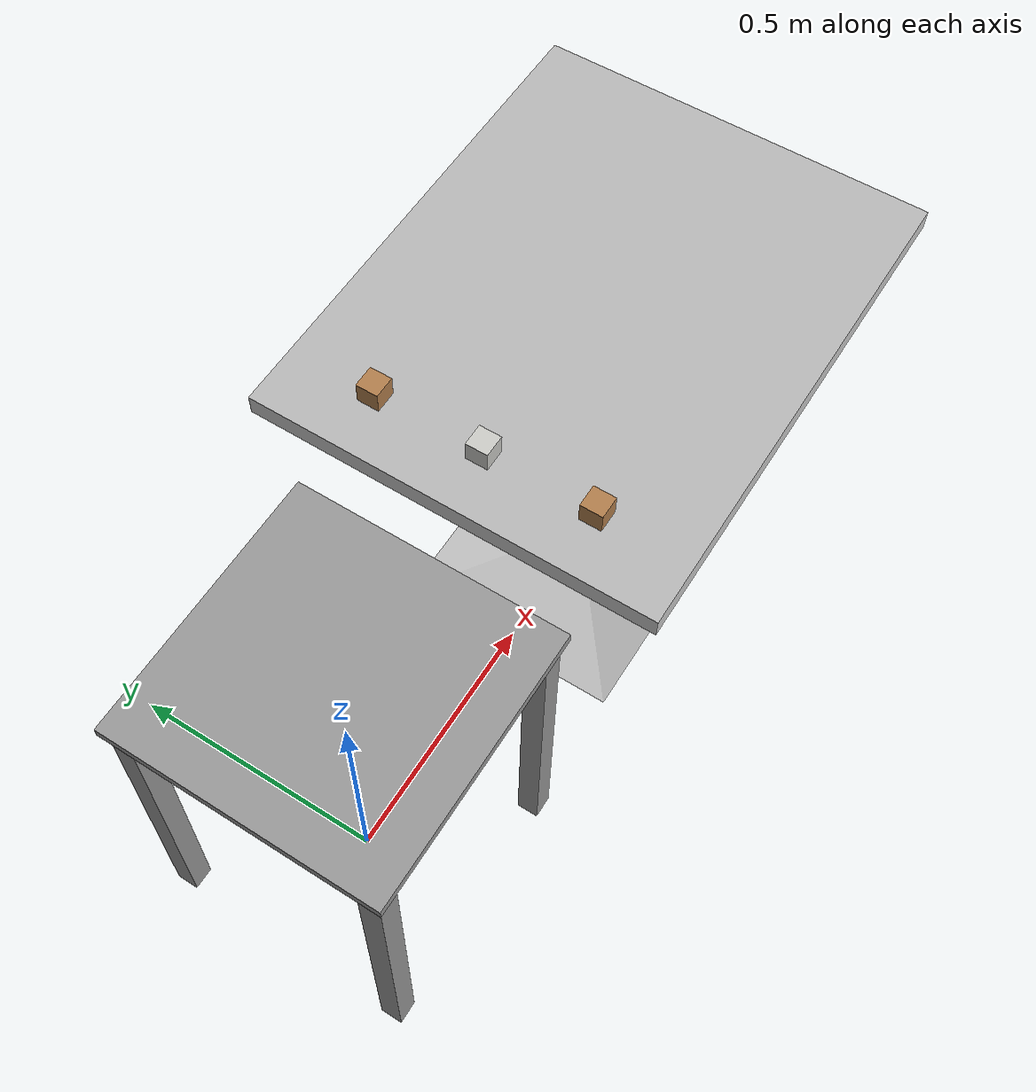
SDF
<sdf version="1.6">
 <world name="ur3_cubes">
  <gravity>0 0 -9.81</gravity>
  <physics name="default_physics" default="0" type="ode">
   <max_step_size>0.01</max_step_size>
   <real_time_factor>1</real_time_factor>
   <real_time_update_rate>100</real_time_update_rate>
   <solver><iters>20</iters><sor>1.0</sor></solver>
   <contact>
    <max_contacts>1</max_contacts>
    <surface_layer>0.001</surface_layer>
    <contact_surface_layer>0.001</contact_surface_layer>
   </contact>
  </physics>
  <plugin name="ros_link_attacher_plugin" filename="libgazebo_ros_link_attacher.so"/>
  <scene><ambient>0.4 0.4 0.4 1</ambient><background>0.40 0.43 0.67 1</background><shadows>1</shadows></scene>
  <include><uri>model://sun</uri></include>
  <model name="ur_base"><include><uri>model://ur_base</uri></include></model>
  <model name="cafe_table">
   <link name="cafe_table::link">
    <pose>0.75 0 0 0 -0 0</pose>
    <inertial>
     <mass>1</mass>
     <inertia><ixx>1</ixx><ixy>0</ixy><ixz>0</ixz><iyy>1</iyy><iyz>0</iyz><izz>1</izz></inertia>
    </inertial>
    <visual name="visual">
     <geometry><mesh><uri>model://cafe_table/meshes/cafe_table.dae</uri><scale>1 0.8 1</scale></mesh></geometry>
     <material><shader type="pixel"><normal_map>__default__</normal_map></shader></material>
    </visual>
    <collision name="surface">
     <max_contacts>5</max_contacts>
     <pose>0 0 0.755 0 -0 0</pose>
     <geometry><box><size>0.913 0.913 0.04</size></box></geometry>
     <surface>
      <friction>
       <ode><mu>1</mu><mu2>1</mu2><fdir1>0 0 0</fdir1><slip1>0</slip1><slip2>0</slip2></ode>
       <torsional>
        <coefficient>1</coefficient>
        <patch_radius>0</patch_radius>
        <surface_radius>0</surface_radius>
        <use_patch_radius>1</use_patch_radius>
        <ode><slip>0</slip></ode>
       </torsional>
      </friction>
      <bounce><restitution_coefficient>0</restitution_coefficient><threshold>1e+06</threshold></bounce>
      <contact>
       <collide_without_contact>0</collide_without_contact>
       <collide_without_contact_bitmask>1</collide_without_contact_bitmask>
       <collide_bitmask>1</collide_bitmask>
       <ode>
        <soft_cfm>0</soft_cfm>
        <soft_erp>0.2</soft_erp>
        <kp>1e+13</kp>
        <kd>1</kd>
        <max_vel>0.01</max_vel>
        <min_depth>0</min_depth>
       </ode>
       <bullet>
        <split_impulse>1</split_impulse>
        <split_impulse_penetration_threshold>-0.01</split_impulse_penetration_threshold>
        <soft_cfm>0</soft_cfm>
        <soft_erp>0.2</soft_erp>
        <kp>1e+13</kp>
        <kd>1</kd>
       </bullet>
      </contact>
     </surface>
    </collision>
    <collision name="column">
     <pose>0 0 0.37 0 -0 0</pose>
     <geometry><box><size>0.042 0.042 0.74</size></box></geometry>
     <surface>
      <friction>
       <ode><mu>1</mu><mu2>1</mu2><fdir1>0 0 0</fdir1><slip1>0</slip1><slip2>0</slip2></ode>
       <torsional>
        <coefficient>1</coefficient>
        <patch_radius>0</patch_radius>
        <surface_radius>0</surface_radius>
        <use_patch_radius>1</use_patch_radius>
        <ode><slip>0</slip></ode>
       </torsional>
      </friction>
      <bounce><restitution_coefficient>0</restitution_coefficient><threshold>1e+06</threshold></bounce>
      <contact>
       <collide_without_contact>0</collide_without_contact>
       <collide_without_contact_bitmask>1</collide_without_contact_bitmask>
       <collide_bitmask>1</collide_bitmask>
       <ode>
        <soft_cfm>0</soft_cfm>
        <soft_erp>0.2</soft_erp>
        <kp>1e+13</kp>
        <kd>1</kd>
        <max_vel>0.01</max_vel>
        <min_depth>0</min_depth>
       </ode>
       <bullet>
        <split_impulse>1</split_impulse>
        <split_impulse_penetration_threshold>-0.01</split_impulse_penetration_threshold>
        <soft_cfm>0</soft_cfm>
        <soft_erp>0.2</soft_erp>
        <kp>1e+13</kp>
        <kd>1</kd>
       </bullet>
      </contact>
     </surface>
    </collision>
    <collision name="base">
     <pose>0 0 0.02 0 -0 0</pose>
     <geometry><box><size>0.56 0.56 0.04</size></box></geometry>
     <surface>
      <friction>
       <ode><mu>1</mu><mu2>1</mu2><fdir1>0 0 0</fdir1><slip1>0</slip1><slip2>0</slip2></ode>
       <torsional>
        <coefficient>1</coefficient>
        <patch_radius>0</patch_radius>
        <surface_radius>0</surface_radius>
        <use_patch_radius>1</use_patch_radius>
        <ode><slip>0</slip></ode>
       </torsional>
      </friction>
      <bounce><restitution_coefficient>0</restitution_coefficient><threshold>1e+06</threshold></bounce>
      <contact>
       <collide_without_contact>0</collide_without_contact>
       <collide_without_contact_bitmask>1</collide_without_contact_bitmask>
       <collide_bitmask>1</collide_bitmask>
       <ode>
        <soft_cfm>0</soft_cfm>
        <soft_erp>0.2</soft_erp>
        <kp>1e+13</kp>
        <kd>1</kd>
        <max_vel>0.01</max_vel>
        <min_depth>0</min_depth>
       </ode>
       <bullet>
        <split_impulse>1</split_impulse>
        <split_impulse_penetration_threshold>-0.01</split_impulse_penetration_threshold>
        <soft_cfm>0</soft_cfm>
        <soft_erp>0.2</soft_erp>
        <kp>1e+13</kp>
        <kd>1</kd>
       </bullet>
      </contact>
     </surface>
    </collision>
    <sensor name="contact_sensor" type="contact"><contact><collision>surface</collision></contact></sensor>
   </link>
   <static>1</static>
  </model>
  <model name="cube1">
   <pose>0.4 -0.2 0.775 0 0 0</pose>
   <link name="link">
    <pose>0 0 0.02 0 0 0</pose>
    <inertial>
     <mass>0.0565</mass>
     <inertia>
      <ixx>2.3541666666666672e-05</ixx>
      <ixy>0</ixy>
      <ixz>0</ixz>
      <iyy>2.3541666666666672e-05</iyy>
      <iyz>0</iyz>
      <izz>2.3541666666666672e-05</izz>
     </inertia>
    </inertial>
    <collision name="collision">
     <geometry><box><size>0.04 0.04 0.04</size></box></geometry>
     <surface>
      <contact>
       <poissons_ratio>0.347</poissons_ratio>
       <elastic_modulus>8.8e+09</elastic_modulus>
       <ode><kp>100000</kp><kd>1</kd><max_vel>1.0</max_vel><min_depth>0.001</min_depth></ode>
      </contact>
      <friction>
       <torsional>
        <coefficient>1.0</coefficient>
        <use_patch_radius>0</use_patch_radius>
        <surface_radius>0.05</surface_radius>
       </torsional>
      </friction>
     </surface>
    </collision>
    <visual name="visual">
     <geometry><box><size>0.04 0.04 0.04</size></box></geometry>
     <material>
      <script><uri>model://media/materials/scripts/gazebo.material</uri><name>Gazebo/Wood</name></script>
     </material>
    </visual>
   </link>
  </model>
  <model name="cube2">
   <pose>0.4 0 0.775 0 0 0</pose>
   <link name="link">
    <pose>0 0 0.02 0 0 0</pose>
    <inertial>
     <mass>0.0565</mass>
     <inertia>
      <ixx>2.3541666666666672e-05</ixx>
      <ixy>0</ixy>
      <ixz>0</ixz>
      <iyy>2.3541666666666672e-05</iyy>
      <iyz>0</iyz>
      <izz>2.3541666666666672e-05</izz>
     </inertia>
    </inertial>
    <collision name="collision">
     <geometry><box><size>0.04 0.04 0.04</size></box></geometry>
     <surface>
      <contact>
       <poissons_ratio>0.347</poissons_ratio>
       <elastic_modulus>8.8e+09</elastic_modulus>
       <ode><kp>100000</kp><kd>1</kd><max_vel>1.0</max_vel><min_depth>0.001</min_depth></ode>
      </contact>
      <friction>
       <torsional>
        <coefficient>1.0</coefficient>
        <use_patch_radius>0</use_patch_radius>
        <surface_radius>0.05</surface_radius>
       </torsional>
      </friction>
     </surface>
    </collision>
    <visual name="visual">
     <geometry><box><size>0.04 0.04 0.04</size></box></geometry>
     <material>
      <script><uri>model://media/materials/scripts/gazebo.material</uri><name>CeilingTiled</name></script>
     </material>
    </visual>
   </link>
  </model>
  <model name="cube3">
   <pose>0.4 0.2 0.775 0 0 0</pose>
   <link name="link">
    <pose>0 0 0.02 0 0 0</pose>
    <inertial>
     <mass>0.0565</mass>
     <inertia>
      <ixx>2.3541666666666672e-05</ixx>
      <ixy>0</ixy>
      <ixz>0</ixz>
      <iyy>2.3541666666666672e-05</iyy>
      <iyz>0</iyz>
      <izz>2.3541666666666672e-05</izz>
     </inertia>
    </inertial>
    <collision name="collision">
     <geometry><box><size>0.04 0.04 0.04</size></box></geometry>
     <surface>
      <contact>
       <poissons_ratio>0.347</poissons_ratio>
       <elastic_modulus>8.8e+09</elastic_modulus>
       <ode><kp>100000</kp><kd>1</kd><max_vel>1.0</max_vel><min_depth>0.001</min_depth></ode>
      </contact>
      <friction>
       <torsional>
        <coefficient>1.0</coefficient>
        <use_patch_radius>0</use_patch_radius>
        <surface_radius>0.05</surface_radius>
       </torsional>
      </friction>
     </surface>
    </collision>
    <visual name="visual">
     <geometry><box><size>0.04 0.04 0.04</size></box></geometry>
     <material>
      <script><uri>model://media/materials/scripts/gazebo.material</uri><name>Gazebo/WoodPallet</name></script>
     </material>
    </visual>
   </link>
  </model>
 </world>
</sdf>

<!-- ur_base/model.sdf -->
<sdf version="1.6">
  <model name="ur_base">
    <static>true</static>

    <link name="top_plate">
      <pose>0 0 0.67501 0 0 0</pose>
      <collision name="top_plate_collision">
        <geometry>
          <box>
            <size>0.5 0.5 0.02</size>
          </box>
        </geometry>
        <surface>
          <contact>
            <collide_bitmask>0x01</collide_bitmask>
          </contact>
        </surface>
      </collision>
      <visual name="top_plate_visual">
        <geometry>
          <box>
            <size>0.5 0.5 0.02</size>
          </box>
        </geometry>
        <material>
          <script>
            <uri>file://media/materials/scripts/gazebo.material</uri>
            <name>Gazebo/Grey</name>
          </script>
        </material>
      </visual>
    </link>
    <link name="leg1">
      <pose>0.22 0.22 0.35 0 0 0</pose>
      <visual name="leg1_visual">
        <geometry>
          <box>
            <size>0.04 0.04 0.655</size>
          </box>
        </geometry>
        <material>
          <script>
            <uri>file://media/materials/scripts/gazebo.material</uri>
            <name>Gazebo/Grey</name>
          </script>
        </material>
      </visual>
    </link>
    <link name="leg2">
      <pose>-0.22 0.22 0.35 0 0 0</pose>
      <visual name="leg2_visual">
        <geometry>
          <box>
            <size>0.04 0.04 0.655</size>
          </box>
        </geometry>
        <material>
          <script>
            <uri>file://media/materials/scripts/gazebo.material</uri>
            <name>Gazebo/Grey</name>
          </script>
        </material>
      </visual>
    </link>
    <link name="leg3">
      <pose>0.22 -0.22 0.35 0 0 0</pose>
      <visual name="leg3_visual">
        <geometry>
          <box>
            <size>0.04 0.04 0.655</size>
          </box>
        </geometry>
        <material>
          <script>
            <uri>file://media/materials/scripts/gazebo.material</uri>
            <name>Gazebo/Grey</name>
          </script>
        </material>
      </visual>
    </link>
    <link name="leg4">
      <pose>-0.22 -0.22 0.35 0 0 0</pose>
      <visual name="leg4_visual">
        <geometry>
          <box>
            <size>0.04 0.04 0.655</size>
          </box>
        </geometry>
        <material>
          <script>
            <uri>file://media/materials/scripts/gazebo.material</uri>
            <name>Gazebo/Grey</name>
          </script>
        </material>
      </visual>
    </link>
  </model>
</sdf>
